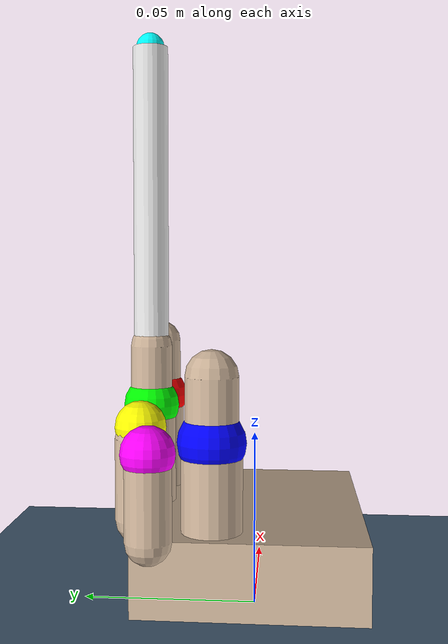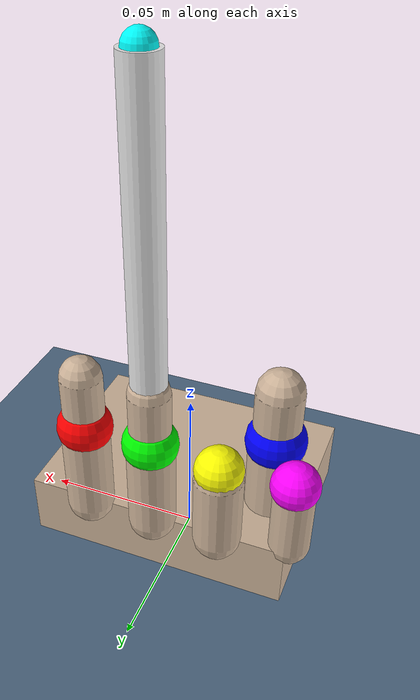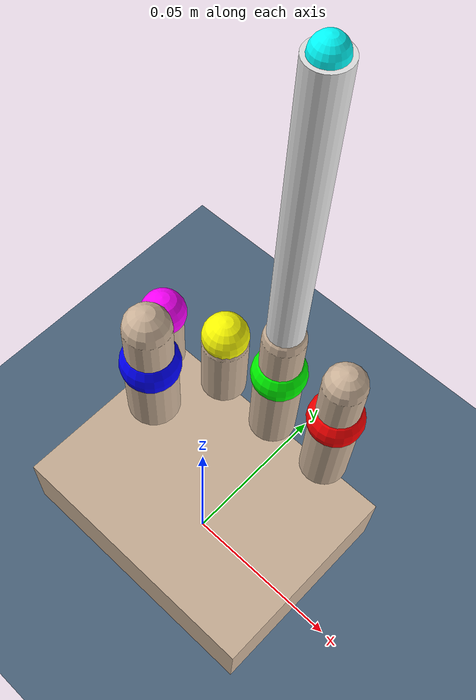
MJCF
<mujoco model="shadow_hand_minimal">

  <option timestep="0.002" iterations="50" solver="PGS"/>

  <default>
    <joint damping="0.05" armature="0.001"/>
    <position kp="2.0" forcerange="-5 5"/>
    <geom condim="4" friction="1.0 0.01 0.001" rgba="0.8 0.7 0.6 1"/>
  </default>

  <worldbody>
    <light pos="0 0 2" dir="0 0 -1" diffuse="0.8 0.8 0.8"/>
    <geom name="floor" type="plane" size="1 1 0.1" rgba="0.3 0.4 0.5 1"/>

    <!-- Palm -->
    <body name="palm" pos="0 0 0.02">
      <geom type="box" size="0.04 0.03 0.01" rgba="0.8 0.7 0.6 1"/>

      <!-- Index finger -->
      <body name="index_prox" pos="0.02 0.03 0.01">
        <joint name="rh_FFJ3" type="hinge" axis="1 0 0" range="0 1.5"/>
        <geom type="capsule" size="0.007" fromto="0 0 0 0 0 0.025"/>
        <site name="index_tip" pos="0 0 0.028" size="0.008" rgba="1 0 0 1"/>

        <body name="index_dist" pos="0 0 0.025">
          <joint name="rh_FFJ2" type="hinge" axis="1 0 0" range="0 1.5"/>
          <geom type="capsule" size="0.006" fromto="0 0 0 0 0 0.02"/>
        </body>
      </body>

      <!-- Middle finger -->
      <body name="middle_prox" pos="0 0.03 0.01">
        <joint name="rh_MFJ3" type="hinge" axis="1 0 0" range="0 1.5"/>
        <geom type="capsule" size="0.007" fromto="0 0 0 0 0 0.025"/>
        <site name="middle_tip" pos="0 0 0.028" size="0.008" rgba="0 1 0 1"/>

        <body name="middle_dist" pos="0 0 0.025">
          <joint name="rh_MFJ2" type="hinge" axis="1 0 0" range="0 1.5"/>
          <geom type="capsule" size="0.006" fromto="0 0 0 0 0 0.02"/>
        </body>
      </body>

      <!-- Thumb -->
      <body name="thumb_prox" pos="-0.03 0.01 0.005" euler="0 0 -0.5">
        <joint name="rh_THJ2" type="hinge" axis="0 1 0" range="-0.7 0.7"/>
        <geom type="capsule" size="0.008" fromto="0 0 0 0 0 0.025"/>
        <site name="thumb_tip" pos="0 0 0.028" size="0.009" rgba="0 0 1 1"/>

        <body name="thumb_dist" pos="0 0 0.025">
          <joint name="rh_THJ1" type="hinge" axis="1 0 0" range="-0.3 1.5"/>
          <geom type="capsule" size="0.007" fromto="0 0 0 0 0 0.02"/>
        </body>
      </body>

      <!-- Ring finger -->
      <body name="ring_prox" pos="-0.02 0.03 0.01">
        <joint name="rh_RFJ3" type="hinge" axis="1 0 0" range="0 1.5"/>
        <geom type="capsule" size="0.007" fromto="0 0 0 0 0 0.022"/>
        <site name="ring_tip" pos="0 0 0.025" size="0.007" rgba="1 1 0 1"/>
      </body>

      <!-- Little finger -->
      <body name="little_prox" pos="-0.04 0.025 0.01">
        <joint name="rh_LFJ3" type="hinge" axis="1 0 0" range="0 1.5"/>
        <geom type="capsule" size="0.006" fromto="0 0 0 0 0 0.02"/>
        <site name="little_tip" pos="0 0 0.022" size="0.007" rgba="1 0 1 1"/>
      </body>

    </body>

    <!-- Pen object -->
    <body name="pen" pos="0 0.03 0.1">
      <joint name="pen_joint" type="free"/>
      <geom name="pen_body_1" type="cylinder" size="0.005 0.06"
            rgba="0.9 0.9 0.9 1" condim="6" friction="1.0 0.01 0.001" density="500"/>
      <site name="pen_start"  pos="0 0  0.06" size="0.004" rgba="0 1 1 1"/>
      <site name="pen_middle" pos="0 0  0"    size="0.004" rgba="0 1 1 1"/>
      <site name="pen_end"    pos="0 0 -0.06" size="0.004" rgba="0 1 1 1"/>
    </body>

  </worldbody>

  <actuator>
    <position name="act_FFJ3" joint="rh_FFJ3" ctrlrange="0 1.5"/>
    <position name="act_FFJ2" joint="rh_FFJ2" ctrlrange="0 1.5"/>
    <position name="act_MFJ3" joint="rh_MFJ3" ctrlrange="0 1.5"/>
    <position name="act_MFJ2" joint="rh_MFJ2" ctrlrange="0 1.5"/>
    <position name="act_THJ2" joint="rh_THJ2" ctrlrange="-0.7 0.7"/>
    <position name="act_THJ1" joint="rh_THJ1" ctrlrange="-0.3 1.5"/>
    <position name="act_RFJ3" joint="rh_RFJ3" ctrlrange="0 1.5"/>
    <position name="act_LFJ3" joint="rh_LFJ3" ctrlrange="0 1.5"/>
  </actuator>

  <sensor>
    <touch name="touch_thumb"  site="thumb_tip"/>
    <touch name="touch_index"  site="index_tip"/>
    <touch name="touch_middle" site="middle_tip"/>
    <touch name="touch_ring"   site="ring_tip"/>
    <touch name="touch_little" site="little_tip"/>
    <touch name="touch_pen_start"  site="pen_start"/>
    <touch name="touch_pen_middle" site="pen_middle"/>
    <touch name="touch_pen_end"    site="pen_end"/>
    <framepos  name="pen_pos"    objtype="site" objname="pen_middle"/>
    <framequat name="pen_orient" objtype="site" objname="pen_middle"/>
  </sensor>

</mujoco>
